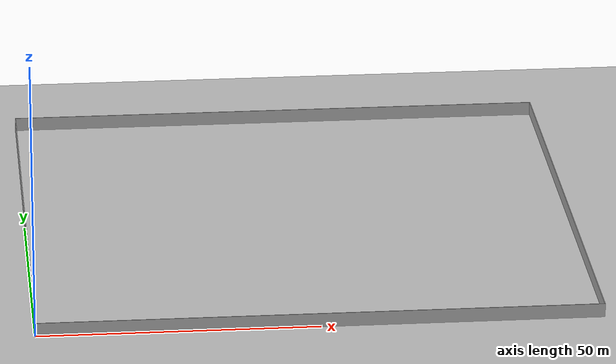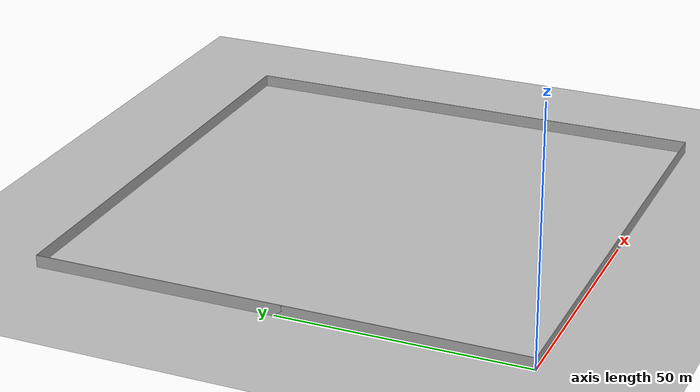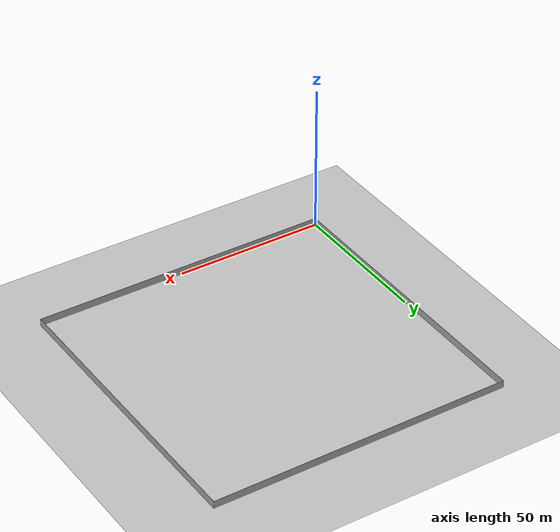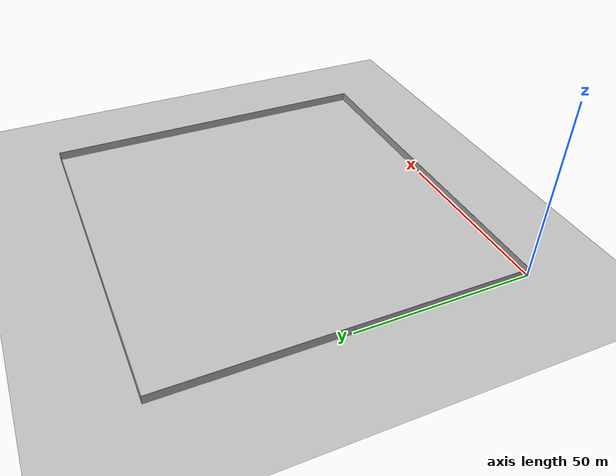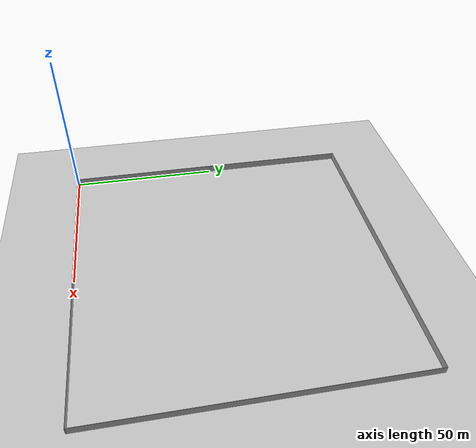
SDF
<?xml version="1.0" ?>
<sdf version="1.4">
  <world name="default">
    <include>
      <uri>model://ground_plane</uri>
    </include>
    <include>
      <uri>model://sun</uri>
    </include>
    <include>
      <uri>model://pr2Room</uri>
      <name>pr2Room</name>
    </include>
  </world>
</sdf>

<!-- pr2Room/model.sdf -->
<sdf version='1.6'>
  <model name='pr2Room'>
    <pose frame=''>50 50 0 0 -0 0</pose>
    <link name='Wall_10'>
      <collision name='Wall_10_Collision'>
        <geometry>
          <box>
            <size>100.15 0.15 2.5</size>
          </box>
        </geometry>
        <pose frame=''>0 0 1.25 0 -0 0</pose>
      </collision>
      <visual name='Wall_10_Visual'>
        <pose frame=''>0 0 1.25 0 -0 0</pose>
        <geometry>
          <box>
            <size>100.15 0.15 2.5</size>
          </box>
        </geometry>
        <material>
          <script>
            <uri>file://media/materials/scripts/gazebo.material</uri>
            <name>Gazebo/Grey</name>
          </script>
          <ambient>1 1 1 1</ambient>
        </material>
      </visual>
      <pose frame=''>1e-06 50 0 0 -0 0</pose>
    </link>
    <link name='Wall_44'>
      <collision name='Wall_44_Collision'>
        <geometry>
          <box>
            <size>100.15 0.15 2.5</size>
          </box>
        </geometry>
        <pose frame=''>0 0 1.25 0 -0 0</pose>
      </collision>
      <visual name='Wall_44_Visual'>
        <pose frame=''>0 0 1.25 0 -0 0</pose>
        <geometry>
          <box>
            <size>100.15 0.15 2.5</size>
          </box>
        </geometry>
        <material>
          <script>
            <uri>file://media/materials/scripts/gazebo.material</uri>
            <name>Gazebo/Grey</name>
          </script>
          <ambient>1 1 1 1</ambient>
        </material>
      </visual>
      <pose frame=''>50 -2e-06 0 0 0 -1.5708</pose>
    </link>
    <link name='Wall_5'>
      <collision name='Wall_5_Collision'>
        <geometry>
          <box>
            <size>100.15 0.15 2.5</size>
          </box>
        </geometry>
        <pose frame=''>0 0 1.25 0 -0 0</pose>
      </collision>
      <visual name='Wall_5_Visual'>
        <pose frame=''>0 0 1.25 0 -0 0</pose>
        <geometry>
          <box>
            <size>100.15 0.15 2.5</size>
          </box>
        </geometry>
        <material>
          <script>
            <uri>file://media/materials/scripts/gazebo.material</uri>
            <name>Gazebo/Grey</name>
          </script>
          <ambient>1 1 1 1</ambient>
        </material>
      </visual>
      <pose frame=''>-50 -2e-06 0 0 -0 1.5708</pose>
    </link>
    <link name='Wall_6'>
      <collision name='Wall_6_Collision'>
        <geometry>
          <box>
            <size>100.15 0.15 2.5</size>
          </box>
        </geometry>
        <pose frame=''>0 0 1.25 0 -0 0</pose>
      </collision>
      <visual name='Wall_6_Visual'>
        <pose frame=''>0 0 1.25 0 -0 0</pose>
        <geometry>
          <box>
            <size>100.15 0.15 2.5</size>
          </box>
        </geometry>
        <material>
          <script>
            <uri>file://media/materials/scripts/gazebo.material</uri>
            <name>Gazebo/Grey</name>
          </script>
          <ambient>1 1 1 1</ambient>
        </material>
      </visual>
      <pose frame=''>-50 -2e-06 0 0 0 -1.5708</pose>
    </link>
    <link name='Wall_8'>
      <collision name='Wall_8_Collision'>
        <geometry>
          <box>
            <size>100.15 0.15 2.5</size>
          </box>
        </geometry>
        <pose frame=''>0 0 1.25 0 -0 0</pose>
      </collision>
      <visual name='Wall_8_Visual'>
        <pose frame=''>0 0 1.25 0 -0 0</pose>
        <geometry>
          <box>
            <size>100.15 0.15 2.5</size>
          </box>
        </geometry>
        <material>
          <script>
            <uri>file://media/materials/scripts/gazebo.material</uri>
            <name>Gazebo/Grey</name>
          </script>
          <ambient>1 1 1 1</ambient>
        </material>
      </visual>
      <pose frame=''>1e-06 -50 0 0 -0 3.14159</pose>
    </link>
    <static>1</static>
  </model>
</sdf>
